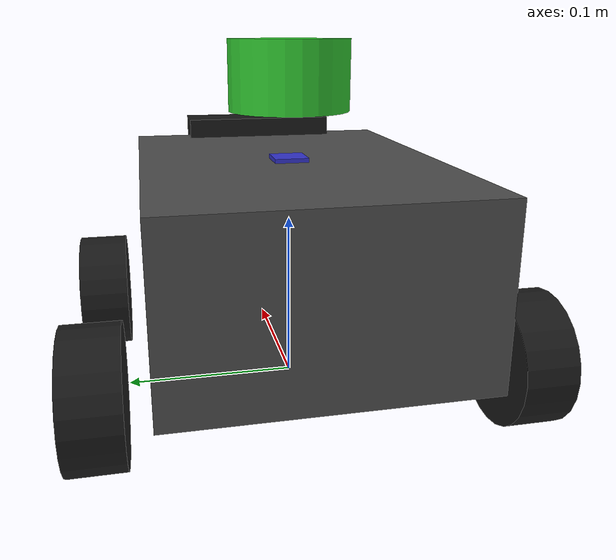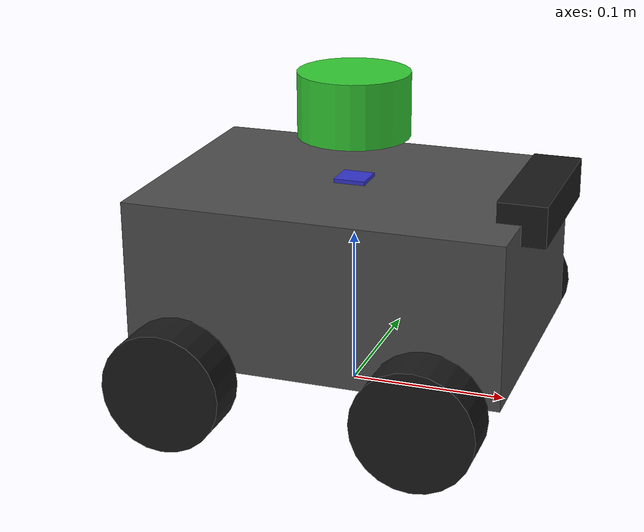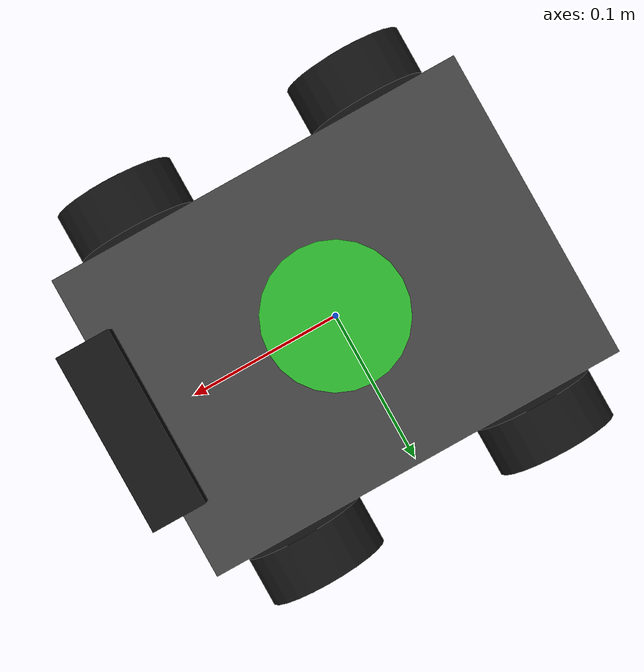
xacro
<?xml version="1.0"?>
<!-- Copyright (c) 2026 Peppermint Robotics. All rights reserved. -->
<robot xmlns:xacro="http://www.ros.org/wiki/xacro" name="pepperbyte">

  <!-- ================================================================
       Shared properties — available to all included files
       ================================================================ -->

  <!-- Chassis: 235 x 173 x 101 mm (L x W x H) -->
  <xacro:property name="chassis_length"    value="0.235"/>
  <xacro:property name="chassis_width"     value="0.173"/>
  <xacro:property name="chassis_height"    value="0.101"/>
  <xacro:property name="chassis_mass"      value="2.375"/>

  <!-- Wheel geometry -->
  <xacro:property name="wheel_radius"      value="0.03725"/>   <!-- 74.5mm diameter -->
  <xacro:property name="wheel_width"       value="0.030"/>
  <xacro:property name="wheel_mass"        value="0.200"/>

  <!-- Drive geometry -->
  <xacro:property name="track_width"       value="0.2285"/>    <!-- 228.5mm centre-to-centre -->
  <xacro:property name="wheelbase"         value="0.154"/>     <!-- 154mm front-to-rear axle -->
  <xacro:property name="ground_clearance"  value="0.03424"/>   <!-- 34.24mm -->

  <!-- Sensor placement -->
  <xacro:property name="lidar_height"      value="0.150"/>     <!-- above base_link -->
  <xacro:property name="camera_height"     value="0.100"/>     <!-- above base_link -->
  <xacro:property name="camera_tilt"       value="${-pi/4}"/>  <!-- -45 deg pitch -->

  <!-- ================================================================
       Materials
       ================================================================ -->
  <material name="dark_grey">
    <color rgba="0.3 0.3 0.3 1.0"/>
  </material>
  <material name="black">
    <color rgba="0.1 0.1 0.1 1.0"/>
  </material>
  <material name="green">
    <color rgba="0.2 0.8 0.2 1.0"/>
  </material>
  <material name="blue">
    <color rgba="0.2 0.2 0.8 1.0"/>
  </material>

  <!-- ================================================================
       Sub-system includes
       ================================================================ -->
  <xacro:include filename="$(find pepperbyte_description)/urdf/chassis.xacro"/>
  <xacro:include filename="$(find pepperbyte_description)/urdf/wheels.xacro"/>
  <xacro:include filename="$(find pepperbyte_description)/urdf/lidar.xacro"/>
  <xacro:include filename="$(find pepperbyte_description)/urdf/imu.xacro"/>
  <xacro:include filename="$(find pepperbyte_description)/urdf/camera.xacro"/>

</robot>

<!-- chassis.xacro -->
<!-- Copyright (c) 2026 Peppermint Robotics. All rights reserved. -->
<!-- Chassis: base_footprint + base_link -->
<robot xmlns:xacro="http://www.ros.org/wiki/xacro">

  <!-- ======================== base_footprint ======================== -->
  <link name="base_footprint"/>

  <joint name="base_footprint_joint" type="fixed">
    <parent link="base_footprint"/>
    <child link="base_link"/>
    <!-- base_link origin is at axle height = ground clearance -->
    <origin xyz="0 0 ${ground_clearance}" rpy="0 0 0"/>
  </joint>

  <!-- ======================== base_link ======================== -->
  <link name="base_link">
    <visual>
      <geometry>
        <box size="${chassis_length} ${chassis_width} ${chassis_height}"/>
      </geometry>
      <origin xyz="0 0 ${chassis_height/2}" rpy="0 0 0"/>
      <material name="dark_grey"/>
    </visual>
    <collision>
      <geometry>
        <box size="${chassis_length} ${chassis_width} ${chassis_height}"/>
      </geometry>
      <origin xyz="0 0 ${chassis_height/2}" rpy="0 0 0"/>
    </collision>
    <inertial>
      <!-- Solid box inertia: m=2.375 kg, 235x173x101mm -->
      <mass value="${chassis_mass}"/>
      <origin xyz="0 0 ${chassis_height/2}" rpy="0 0 0"/>
      <inertia
        ixx="0.00794"
        ixy="0" ixz="0"
        iyy="0.01295"
        iyz="0"
        izz="0.01685"/>
    </inertial>
  </link>

</robot>

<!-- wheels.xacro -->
<!-- Copyright (c) 2026 Peppermint Robotics. All rights reserved. -->
<!-- 4WD wheel macro + instantiation for FL, FR, RL, RR -->
<robot xmlns:xacro="http://www.ros.org/wiki/xacro">

  <xacro:macro name="wheel" params="prefix x_offset y_offset">

    <link name="${prefix}_wheel_link">
      <visual>
        <geometry>
          <cylinder radius="${wheel_radius}" length="${wheel_width}"/>
        </geometry>
        <!-- Rotate cylinder so its axis aligns with Y (roll axis) -->
        <origin xyz="0 0 0" rpy="${pi/2} 0 0"/>
        <material name="black"/>
      </visual>
      <collision>
        <geometry>
          <cylinder radius="${wheel_radius}" length="${wheel_width}"/>
        </geometry>
        <origin xyz="0 0 0" rpy="${pi/2} 0 0"/>
      </collision>
      <inertial>
        <mass value="${wheel_mass}"/>
        <origin xyz="0 0 0" rpy="0 0 0"/>
        <inertia
          ixx="0.0000844"
          ixy="0" ixz="0"
          iyy="0.0001388"
          iyz="0"
          izz="0.0000844"/>
      </inertial>
    </link>

    <joint name="${prefix}_wheel_joint" type="continuous">
      <parent link="base_link"/>
      <child link="${prefix}_wheel_link"/>
      <origin xyz="${x_offset} ${y_offset} 0" rpy="0 0 0"/>
      <axis xyz="0 1 0"/>
    </joint>

  </xacro:macro>

  <!-- ======================== 4-wheel instantiation ========================
       x: ±wheelbase/2  = ±0.077 m
       y: ±track_width/2 = ±0.11425 m  (positive Y = left side)
  -->
  <xacro:wheel prefix="front_left"
               x_offset="${wheelbase/2}"
               y_offset="${track_width/2}"/>

  <xacro:wheel prefix="front_right"
               x_offset="${wheelbase/2}"
               y_offset="${-track_width/2}"/>

  <xacro:wheel prefix="rear_left"
               x_offset="${-wheelbase/2}"
               y_offset="${track_width/2}"/>

  <xacro:wheel prefix="rear_right"
               x_offset="${-wheelbase/2}"
               y_offset="${-track_width/2}"/>

</robot>

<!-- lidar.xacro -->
<!-- Copyright (c) 2026 Peppermint Robotics. All rights reserved. -->
<!-- RPLidar — centred on top of chassis -->
<robot xmlns:xacro="http://www.ros.org/wiki/xacro">

  <link name="lidar_link">
    <visual>
      <geometry>
        <cylinder radius="0.035" length="0.040"/>
      </geometry>
      <origin xyz="0 0 0" rpy="0 0 0"/>
      <material name="green"/>
    </visual>
    <collision>
      <geometry>
        <cylinder radius="0.035" length="0.040"/>
      </geometry>
      <origin xyz="0 0 0" rpy="0 0 0"/>
    </collision>
    <inertial>
      <mass value="0.150"/>
      <origin xyz="0 0 0" rpy="0 0 0"/>
      <inertia ixx="0.0001" ixy="0" ixz="0"
               iyy="0.0001" iyz="0" izz="0.0001"/>
    </inertial>
  </link>

  <joint name="lidar_joint" type="fixed">
    <parent link="base_link"/>
    <child link="lidar_link"/>
    <!-- Centred horizontally, 150mm above base_link origin -->
    <origin xyz="0 0 ${lidar_height}" rpy="0 0 0"/>
  </joint>

</robot>

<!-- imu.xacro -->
<!-- Copyright (c) 2026 Peppermint Robotics. All rights reserved. -->
<!-- BNO055 IMU — flat-mounted at top of chassis -->
<robot xmlns:xacro="http://www.ros.org/wiki/xacro">

  <link name="imu_link">
    <visual>
      <geometry>
        <box size="0.020 0.020 0.005"/>
      </geometry>
      <origin xyz="0 0 0" rpy="0 0 0"/>
      <material name="blue"/>
    </visual>
    <inertial>
      <mass value="0.010"/>
      <origin xyz="0 0 0" rpy="0 0 0"/>
      <inertia ixx="0.00001" ixy="0" ixz="0"
               iyy="0.00001" iyz="0" izz="0.00001"/>
    </inertial>
  </link>

  <joint name="imu_joint" type="fixed">
    <parent link="base_link"/>
    <child link="imu_link"/>
    <!-- Flat on top of the chassis (at chassis_height above base_link origin) -->
    <origin xyz="0 0 ${chassis_height}" rpy="0 0 0"/>
  </joint>

</robot>

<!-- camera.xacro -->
<!-- Copyright (c) 2026 Peppermint Robotics. All rights reserved. -->
<!-- OAK-D Series 2 depth camera — front face, top edge, pointing straight forward -->
<robot xmlns:xacro="http://www.ros.org/wiki/xacro">

  <link name="camera_link">
    <visual>
      <geometry>
        <box size="0.030 0.100 0.025"/>
      </geometry>
      <origin xyz="0 0 0" rpy="0 0 0"/>
      <material name="black"/>
    </visual>
    <collision>
      <geometry>
        <box size="0.030 0.100 0.025"/>
      </geometry>
      <origin xyz="0 0 0" rpy="0 0 0"/>
    </collision>
    <inertial>
      <mass value="0.100"/>
      <origin xyz="0 0 0" rpy="0 0 0"/>
      <inertia ixx="0.0001" ixy="0" ixz="0"
               iyy="0.0001" iyz="0" izz="0.0001"/>
    </inertial>
  </link>

  <joint name="camera_joint" type="fixed">
    <parent link="base_link"/>
    <child link="camera_link"/>
    <!--
      Front face of chassis, top front edge, pointing straight forward.
      X = chassis_length/2 = 0.1175 m (front face)
      Z = chassis_height   = 0.101  m (top edge)
    -->
    <origin xyz="${chassis_length/2} 0 ${chassis_height}" rpy="0 0 0"/>
  </joint>

</robot>
